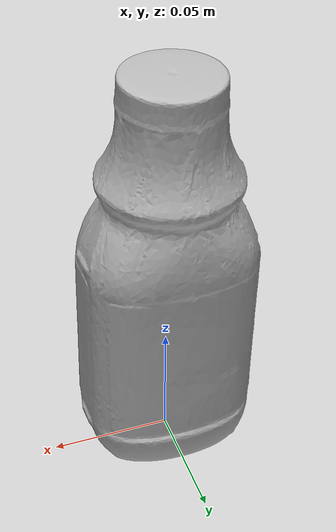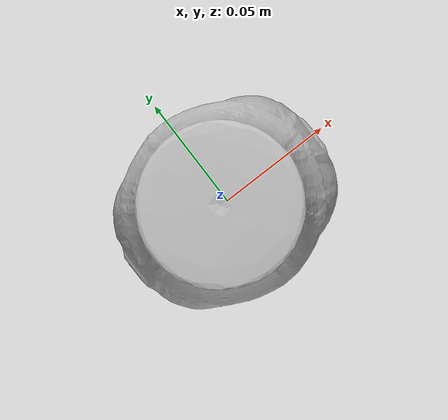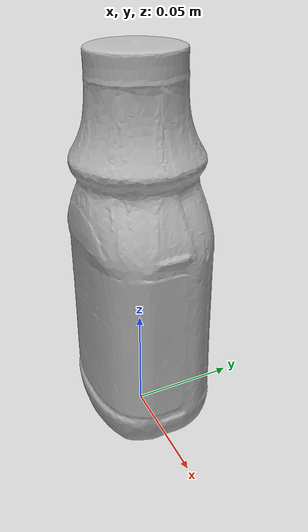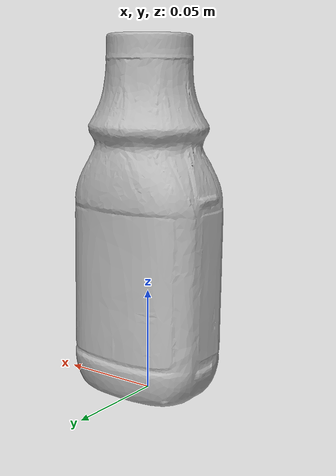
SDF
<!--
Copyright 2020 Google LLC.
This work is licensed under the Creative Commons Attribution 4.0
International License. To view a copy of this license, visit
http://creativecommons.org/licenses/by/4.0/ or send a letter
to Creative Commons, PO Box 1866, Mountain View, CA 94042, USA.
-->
<?xml version="1.0" ?>
<sdf version="1.6">
  <model name="Phillips_Milk_of_Magnesia_Saline_Laxative_Liquid_Original">
    <link name="link_0">
      <visual name="visual">
        <geometry>
          <mesh>
            <uri>meshes/model.obj</uri>
          </mesh>
        </geometry>
      </visual>
      <collision name="collision_0">
        <geometry>
          <mesh>
            <uri>meshes/model.obj</uri>
          </mesh>
        </geometry>
      </collision>
    </link>
  </model>
</sdf>
